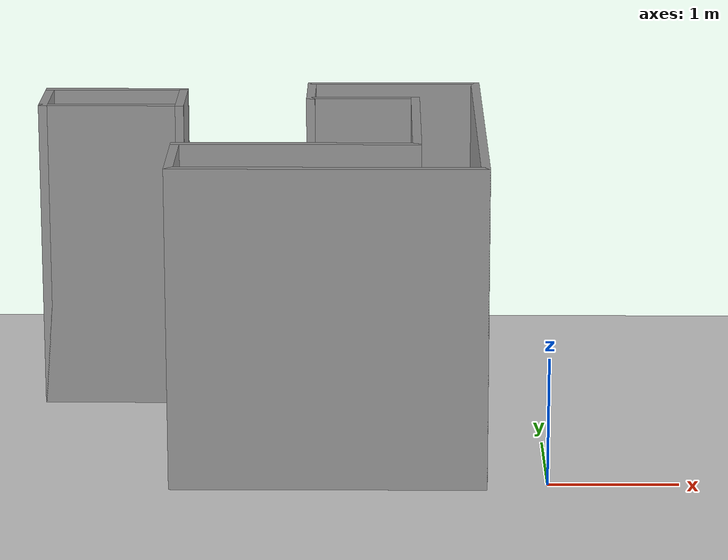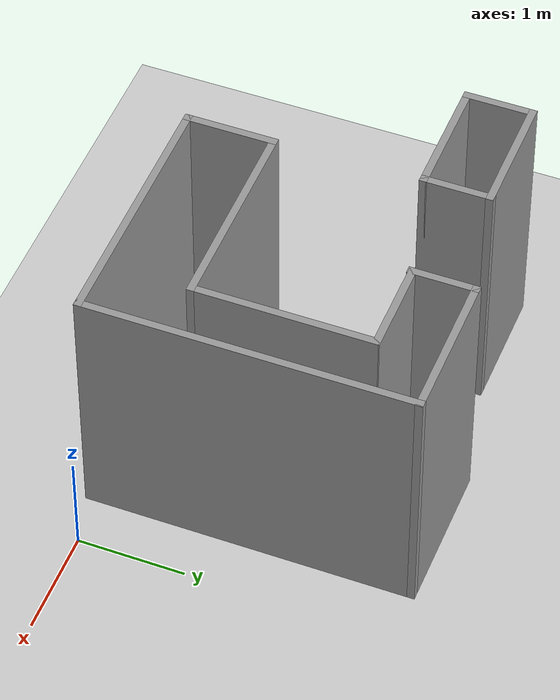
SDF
<sdf version="1.4">
  <world name="default">

    <scene>
      <ambient>0.4 0.4 0.4 1</ambient>
      <background>0.7 0.7 0.7 1</background>
      <shadows>true</shadows>
    </scene>

    <!-- A global light source -->
    <include>
      <uri>model://sun</uri>
    </include>

    <!-- A ground plane -->
    <include>
      <uri>model://ground_plane</uri>
    </include>

    <!-- Open maze -->
    <include>
      <uri>model://Open</uri>
    </include>

    <physics type="ode">
      <real_time_update_rate>1000.0</real_time_update_rate>
      <max_step_size>0.001</max_step_size>
      <real_time_factor>1</real_time_factor>
      <ode>
        <solver>
          <type>quick</type>
          <iters>150</iters>
          <precon_iters>0</precon_iters>
          <sor>1.400000</sor>
          <use_dynamic_moi_rescaling>1</use_dynamic_moi_rescaling>
        </solver>
        <constraints>
          <cfm>0.00001</cfm>
          <erp>0.2</erp>
          <contact_max_correcting_vel>2000.000000</contact_max_correcting_vel>
          <contact_surface_layer>0.01000</contact_surface_layer>
        </constraints>
      </ode>
    </physics>
  </world>

</sdf>

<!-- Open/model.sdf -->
<sdf version='1.6'>
  <model name='Open'>
    <pose frame=''>-2.25 1.4 0 0 -0 0</pose>
    <link name='Wall_0'>
      <collision name='Wall_0_Collision'>
        <geometry>
          <box>
            <size>3.07 0.07 2.5</size>
          </box>
        </geometry>
        <pose frame=''>0 0 1.25 0 -0 0</pose>
      </collision>
      <visual name='Wall_0_Visual'>
        <pose frame=''>0 0 1.25 0 -0 0</pose>
        <geometry>
          <box>
            <size>3.07 0.07 2.5</size>
          </box>
        </geometry>
        <material>
          <script>
            <uri>file://media/materials/scripts/gazebo.material</uri>
            <name>Gazebo/Grey</name>
          </script>
          <ambient>1 1 1 1</ambient>
        </material>
        <meta>
          <layer>0</layer>
        </meta>
      </visual>
      <pose frame=''>1.75 0 0 0 -0 1.5708</pose>
    </link>
    <link name='Wall_10'>
      <collision name='Wall_10_Collision'>
        <geometry>
          <box>
            <size>2.42 0.07 2.5</size>
          </box>
        </geometry>
        <pose frame=''>0 0 1.25 0 -0 0</pose>
      </collision>
      <visual name='Wall_10_Visual'>
        <pose frame=''>0 0 1.25 0 -0 0</pose>
        <geometry>
          <box>
            <size>2.42 0.07 2.5</size>
          </box>
        </geometry>
        <material>
          <script>
            <uri>file://media/materials/scripts/gazebo.material</uri>
            <name>Gazebo/Grey</name>
          </script>
          <ambient>1 1 1 1</ambient>
        </material>
        <meta>
          <layer>0</layer>
        </meta>
      </visual>
      <pose frame=''>0.575 -1.5 0 0 -0 0</pose>
    </link>
    <link name='Wall_13'>
      <collision name='Wall_13_Collision'>
        <geometry>
          <box>
            <size>1.17 0.07 2.5</size>
          </box>
        </geometry>
        <pose frame=''>0 0 1.25 0 -0 0</pose>
      </collision>
      <visual name='Wall_13_Visual'>
        <pose frame=''>0 0 1.25 0 -0 0</pose>
        <geometry>
          <box>
            <size>1.17 0.07 2.5</size>
          </box>
        </geometry>
        <material>
          <script>
            <uri>file://media/materials/scripts/gazebo.material</uri>
            <name>Gazebo/Grey</name>
          </script>
          <ambient>1 1 1 1</ambient>
        </material>
        <meta>
          <layer>0</layer>
        </meta>
      </visual>
      <pose frame=''>-1.2 1.26 0 0 -0 3.14159</pose>
    </link>
    <link name='Wall_14'>
      <collision name='Wall_14_Collision'>
        <geometry>
          <box>
            <size>0.67 0.07 2.5</size>
          </box>
        </geometry>
        <pose frame=''>0 0 1.25 0 -0 0</pose>
      </collision>
      <visual name='Wall_14_Visual'>
        <pose frame=''>0 0 1.25 0 -0 0</pose>
        <geometry>
          <box>
            <size>0.67 0.07 2.5</size>
          </box>
        </geometry>
        <material>
          <script>
            <uri>file://media/materials/scripts/gazebo.material</uri>
            <name>Gazebo/Grey</name>
          </script>
          <ambient>1 1 1 1</ambient>
        </material>
        <meta>
          <layer>0</layer>
        </meta>
      </visual>
      <pose frame=''>-1.75 0.96 0 0 -0 -1.5708</pose>
    </link>
    <link name='Wall_15'>
      <collision name='Wall_15_Collision'>
        <geometry>
          <box>
            <size>1.17 0.07 2.5</size>
          </box>
        </geometry>
        <pose frame=''>0 0 1.25 0 -0 0</pose>
      </collision>
      <visual name='Wall_15_Visual'>
        <pose frame=''>0 0 1.25 0 -0 0</pose>
        <geometry>
          <box>
            <size>1.17 0.07 2.5</size>
          </box>
        </geometry>
        <material>
          <script>
            <uri>file://media/materials/scripts/gazebo.material</uri>
            <name>Gazebo/Grey</name>
          </script>
          <ambient>1 1 1 1</ambient>
        </material>
        <meta>
          <layer>0</layer>
        </meta>
      </visual>
      <pose frame=''>-1.2 0.66 0 0 -0 0</pose>
    </link>
    <link name='Wall_16'>
      <collision name='Wall_16_Collision'>
        <geometry>
          <box>
            <size>0.67 0.07 2.5</size>
          </box>
        </geometry>
        <pose frame=''>0 0 1.25 0 -0 0</pose>
      </collision>
      <visual name='Wall_16_Visual'>
        <pose frame=''>0 0 1.25 0 -0 0</pose>
        <geometry>
          <box>
            <size>0.67 0.07 2.5</size>
          </box>
        </geometry>
        <material>
          <script>
            <uri>file://media/materials/scripts/gazebo.material</uri>
            <name>Gazebo/Grey</name>
          </script>
          <ambient>1 1 1 1</ambient>
        </material>
        <meta>
          <layer>0</layer>
        </meta>
      </visual>
      <pose frame=''>-0.65 0.96 0 0 -0 1.5708</pose>
    </link>
    <link name='Wall_3'>
      <collision name='Wall_3_Collision'>
        <geometry>
          <box>
            <size>1.42 0.07 2.5</size>
          </box>
        </geometry>
        <pose frame=''>0 0 1.25 0 -0 0</pose>
      </collision>
      <visual name='Wall_3_Visual'>
        <pose frame=''>0 0 1.25 0 -0 0</pose>
        <geometry>
          <box>
            <size>1.42 0.07 2.5</size>
          </box>
        </geometry>
        <material>
          <script>
            <uri>file://media/materials/scripts/gazebo.material</uri>
            <name>Gazebo/Grey</name>
          </script>
          <ambient>1 1 1 1</ambient>
        </material>
        <meta>
          <layer>0</layer>
        </meta>
      </visual>
      <pose frame=''>1.075 1.5 0 0 -0 3.14159</pose>
    </link>
    <link name='Wall_5'>
      <collision name='Wall_5_Collision'>
        <geometry>
          <box>
            <size>0.64 0.07 2.5</size>
          </box>
        </geometry>
        <pose frame=''>0 0 1.25 0 -0 0</pose>
      </collision>
      <visual name='Wall_5_Visual'>
        <pose frame=''>0 0 1.25 0 -0 0</pose>
        <geometry>
          <box>
            <size>0.64 0.07 2.5</size>
          </box>
        </geometry>
        <material>
          <script>
            <uri>file://media/materials/scripts/gazebo.material</uri>
            <name>Gazebo/Grey</name>
          </script>
          <ambient>1 1 1 1</ambient>
        </material>
        <meta>
          <layer>0</layer>
        </meta>
      </visual>
      <pose frame=''>0.4 1.215 0 0 -0 -1.5708</pose>
    </link>
    <link name='Wall_6'>
      <collision name='Wall_6_Collision'>
        <geometry>
          <box>
            <size>0.92 0.07 2.5</size>
          </box>
        </geometry>
        <pose frame=''>0 0 1.25 0 -0 0</pose>
      </collision>
      <visual name='Wall_6_Visual'>
        <pose frame=''>0 0 1.25 0 -0 0</pose>
        <geometry>
          <box>
            <size>0.92 0.07 2.5</size>
          </box>
        </geometry>
        <material>
          <script>
            <uri>file://media/materials/scripts/gazebo.material</uri>
            <name>Gazebo/Grey</name>
          </script>
          <ambient>1 1 1 1</ambient>
        </material>
        <meta>
          <layer>0</layer>
        </meta>
      </visual>
      <pose frame=''>0.825 0.94 0 0 -0 0</pose>
    </link>
    <link name='Wall_7'>
      <collision name='Wall_7_Collision'>
        <geometry>
          <box>
            <size>1.7 0.07 2.5</size>
          </box>
        </geometry>
        <pose frame=''>0 0 1.25 0 -0 0</pose>
      </collision>
      <visual name='Wall_7_Visual'>
        <pose frame=''>0 0 1.25 0 -0 0</pose>
        <geometry>
          <box>
            <size>1.7 0.07 2.5</size>
          </box>
        </geometry>
        <material>
          <script>
            <uri>file://media/materials/scripts/gazebo.material</uri>
            <name>Gazebo/Grey</name>
          </script>
          <ambient>1 1 1 1</ambient>
        </material>
        <meta>
          <layer>0</layer>
        </meta>
      </visual>
      <pose frame=''>1.25 0.115 0 0 -0 -1.5708</pose>
    </link>
    <link name='Wall_8'>
      <collision name='Wall_8_Collision'>
        <geometry>
          <box>
            <size>1.92 0.07 2.5</size>
          </box>
        </geometry>
        <pose frame=''>0 0 1.25 0 -0 0</pose>
      </collision>
      <visual name='Wall_8_Visual'>
        <pose frame=''>0 0 1.25 0 -0 0</pose>
        <geometry>
          <box>
            <size>1.92 0.07 2.5</size>
          </box>
        </geometry>
        <material>
          <script>
            <uri>file://media/materials/scripts/gazebo.material</uri>
            <name>Gazebo/Grey</name>
          </script>
          <ambient>1 1 1 1</ambient>
        </material>
        <meta>
          <layer>0</layer>
        </meta>
      </visual>
      <pose frame=''>0.325 -0.7 0 0 -0 3.14159</pose>
    </link>
    <link name='Wall_9'>
      <collision name='Wall_9_Collision'>
        <geometry>
          <box>
            <size>0.87 0.07 2.5</size>
          </box>
        </geometry>
        <pose frame=''>0 0 1.25 0 -0 0</pose>
      </collision>
      <visual name='Wall_9_Visual'>
        <pose frame=''>0 0 1.25 0 -0 0</pose>
        <geometry>
          <box>
            <size>0.87 0.07 2.5</size>
          </box>
        </geometry>
        <material>
          <script>
            <uri>file://media/materials/scripts/gazebo.material</uri>
            <name>Gazebo/Grey</name>
          </script>
          <ambient>1 1 1 1</ambient>
        </material>
        <meta>
          <layer>0</layer>
        </meta>
      </visual>
      <pose frame=''>-0.6 -1.1 0 0 -0 -1.5708</pose>
    </link>
    <static>1</static>
  </model>
</sdf>
